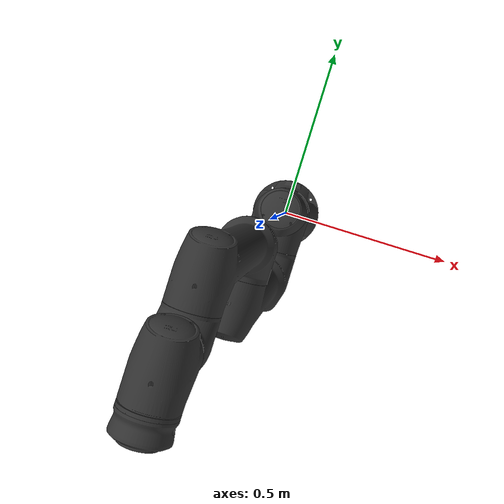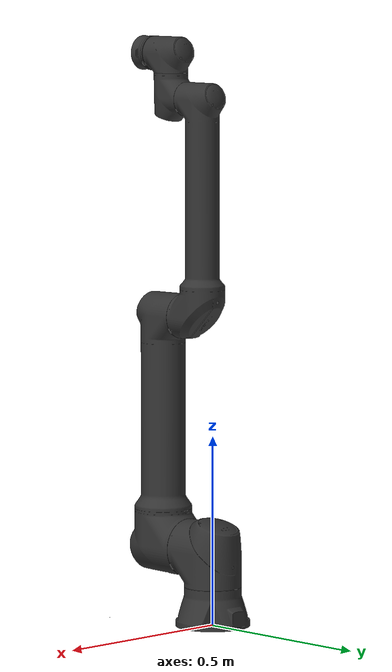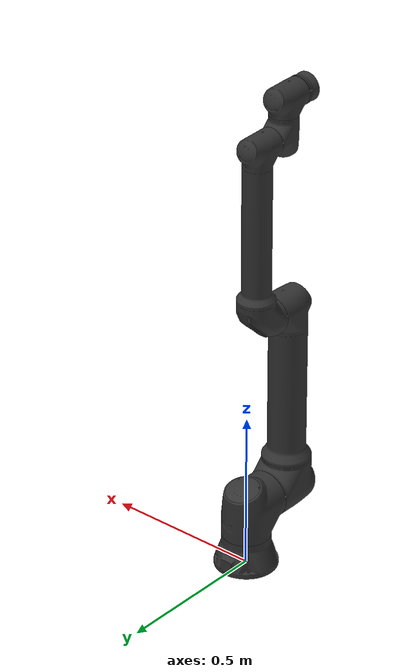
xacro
<?xml version="1.0"?>
<!-- Cobot Robot -->
<robot name="rb10" xmlns:xacro="http://www.ros.org/wiki/xacro">

  <!-- Constants for robot dimensions -->
  <xacro:property name="PI" value="3.1415926535897931"/>

  <xacro:property name="base2module1" value="0.197"/>
  <xacro:property name="pipe1_len" value="0.6127"/>
  <xacro:property name="pipe2_len" value="0.57015"/>
  <xacro:property name="wrist2wrist" value="0.11715"/>
  <xacro:property name="elbow_offset" value="0.1484"/>
  <xacro:property name="base_offset" value="0.1875"/>
  <xacro:property name="wrist2tcp" value="0.1153"/>

 <material name="grey">
        <color rgba="0.2 0.2 0.2 1.0" />
 </material>

 <!--======================= Links =========================-->

 <!-- Base Footprint -->
 <link name="base_footprint">
  <visual>
    <origin xyz="0 0 0" rpy="0 0 0"/>
    <geometry>
      <box size="0.001 0.001 0.001"/>
    </geometry>
    <material name="grey"/>
  </visual>
</link>

<link name="Axis_0">
  <visual>
    <origin xyz="0 0 0" rpy="0 0 0"/>
    <geometry>
      <mesh filename="package://rb_description/meshes/visual/RB10/RB10-AXIS-0.stl" scale="0.001 0.001 0.001"/>
    </geometry>
    <material name="grey"/>
  </visual>
  <collision>
    <origin xyz="0 0 0" rpy="0 0 0" />
      <geometry>
        <mesh filename="package://rb_description/meshes/collision/RB10/RB10-AXIS-0.stl" scale="0.001 0.001 0.001"/>
    </geometry>
  </collision>
</link>

<!-- Base -->
<link name="base">
  <visual>
    <origin xyz="0 0 0" rpy="0 0 0"/>
    <geometry>
      <mesh filename="package://rb_description/meshes/visual/RB10/RB10-AXIS-1.stl" scale="0.001 0.001 0.001"/>
    </geometry>
    <material name="grey"/>
  </visual>
  <collision>
    <origin xyz="0 0 0" rpy="0 0 0" />
      <geometry>
        <mesh filename="package://rb_description/meshes/collision/RB10/RB10-AXIS-1.stl" scale="0.001 0.001 0.001"/>
    </geometry>
  </collision>
</link>

<!-- Shoulder -->
<link name="shoulder">
  <visual>
    <origin xyz="0 0 ${-base2module1}" rpy="0 0 0"/>
    <geometry>
      <mesh filename="package://rb_description/meshes/visual/RB10/RB10-AXIS-2.stl" scale="0.001 0.001 0.001"/>
    </geometry>
    <material name="grey"/>
  </visual>
  <collision>
    <origin xyz="0 0 ${-base2module1}" rpy="0 0 0" />
      <geometry>
        <mesh filename="package://rb_description/meshes/collision/RB10/RB10-AXIS-2.stl" scale="0.001 0.001 0.001"/>
    </geometry>
  </collision>
</link>

<!-- Elbow -->
<link name="elbow">
  <visual>
    <origin xyz="0 0 ${-base2module1-pipe1_len} " rpy="0 0 0"/>
    <geometry>
      <mesh filename="package://rb_description/meshes/visual/RB10/RB10-AXIS-3.stl" scale="0.001 0.001 0.001"/>
    </geometry>
    <material name="grey"/>
  </visual>
  <collision>
    <origin xyz="0 0 ${-base2module1-pipe1_len}" rpy="0 0 0" />
      <geometry>
        <mesh filename="package://rb_description/meshes/collision/RB10/RB10-AXIS-3.stl" scale="0.001 0.001 0.001"/>
    </geometry>
  </collision>
</link>

<!-- Wrist1 -->
<link name="wrist1">
  <visual>
    <origin xyz="0 0 ${-base2module1-pipe1_len-pipe2_len}" rpy="0 0 0"/>
    <geometry>
      <mesh filename="package://rb_description/meshes/visual/RB10/RB10-AXIS-4.stl" scale="0.001 0.001 0.001"/>
    </geometry>
    <material name="grey"/>
  </visual>
  <collision>
    <origin xyz="0 0 ${-base2module1-pipe1_len-pipe2_len}" rpy="0 0 0" />
      <geometry>
        <mesh filename="package://rb_description/meshes/collision/RB10/RB10-AXIS-4.stl" scale="0.001 0.001 0.001"/>
    </geometry>
  </collision>
</link>

<!-- Wrist2 -->
<link name="wrist2">
  <visual>
    <origin xyz="0 ${base_offset - elbow_offset + wrist2wrist}  ${-base2module1-pipe1_len-pipe2_len}" rpy="0 0 0"/>
    <geometry>
      <mesh filename="package://rb_description/meshes/visual/RB10/RB10-AXIS-5.stl" scale="0.001 0.001 0.001" />
    </geometry>
    <material name="grey"/>
  </visual>
  <collision>
    <origin xyz="0 ${base_offset - elbow_offset + wrist2wrist}  ${-base2module1-pipe1_len-pipe2_len}" rpy="0 0 0" />
      <geometry>
        <mesh filename="package://rb_description/meshes/collision/RB10/RB10-AXIS-5.stl" scale="0.001 0.001 0.001"/>
    </geometry>
  </collision>
</link>

<!-- Wrist3 -->
<link name="wrist3">
  <visual>
    <origin xyz="0 ${base_offset - elbow_offset + wrist2wrist} ${-base2module1-pipe1_len-pipe2_len-wrist2wrist }" rpy="0 0 0"/>
    <geometry>
      <mesh filename="package://rb_description/meshes/visual/RB10/RB10-AXIS-6.stl" scale="0.001 0.001 0.001"/>
    </geometry>
    <material name="grey"/>
  </visual>
  <collision>
    <origin xyz="0 ${base_offset - elbow_offset + wrist2wrist} ${-base2module1-pipe1_len-pipe2_len-wrist2wrist }" rpy="0 0 0" />
      <geometry>
        <mesh filename="package://rb_description/meshes/collision/RB10/RB10-AXIS-6.stl" scale="0.001 0.001 0.001"/>
    </geometry>
  </collision>
</link>

<!-- TCP -->
<link name="Tool_Center_Point">
  <visual>
     <origin xyz="${wrist2wrist} 0 ${-base2module1-pipe1_len-pipe2_len-wrist2wrist }" rpy="0 0 0"/>
    <geometry>
      <box size="0.001 0.001 0.001"/>
    </geometry>
    <material name="grey"/>
  </visual>
</link>

<!-- Joint -->
<joint name="ground" type="fixed">
  <parent link="base_footprint"/>
  <child link="Axis_0"/>
  <origin xyz="0 0 0" rpy="0 0 0"/>
  <axis xyz="0 0 1" />
</joint>

<joint name="base" type="continuous">
  <parent link="Axis_0"/>
  <child link="base"/>
  <origin xyz="0 0 0" rpy="0 0 0"/>
  <axis xyz="0 0 1" />
</joint>

<joint name="shoulder" type="continuous">
  <parent link="base"/>
  <child link="shoulder"/>
  <origin xyz="0 0 ${base2module1} " rpy="0 0 0"/>
  <axis xyz="0 1 0"/>
</joint>

<joint name="elbow" type="continuous">
  <parent link="shoulder"/>
  <child link="elbow"/>
  <origin xyz="0 0 ${pipe1_len}" rpy="0 0 0"/>
  <axis xyz="0 1 0"/>
</joint>

<joint name="wrist1" type="continuous">
  <parent link="elbow"/>
  <child link="wrist1"/>
  <origin xyz="0 0 ${pipe2_len}" rpy="0 0 0"/>
  <axis xyz="0 1 0"/>
</joint>

<joint name="wrist2" type="continuous">
  <parent link="wrist1"/>
  <child link="wrist2"/>
  <origin xyz="0 ${-base_offset + elbow_offset - wrist2wrist} 0 " rpy="0 0 0"/>
  <axis xyz="0 0 1"/>
</joint>

<joint name="wrist3" type="continuous">
  <parent link="wrist2"/>
  <child link="wrist3"/>
  <origin xyz="0 0 ${wrist2wrist}" rpy="0 0 0"/>
  <!-- ${base_offset - elbow_offset + wrist2wrist} ${wrist2wrist} -->
  <axis xyz="0 1 0"/>
</joint>

<joint name="Tool_Flange" type="fixed">
  <parent link="wrist3"/>
  <child link="Tool_Center_Point"/>
  <origin xyz="0 ${-wrist2tcp} 0" rpy="0 0 0"/>
  <axis xyz="0 0 0"/>
</joint>

</robot>
